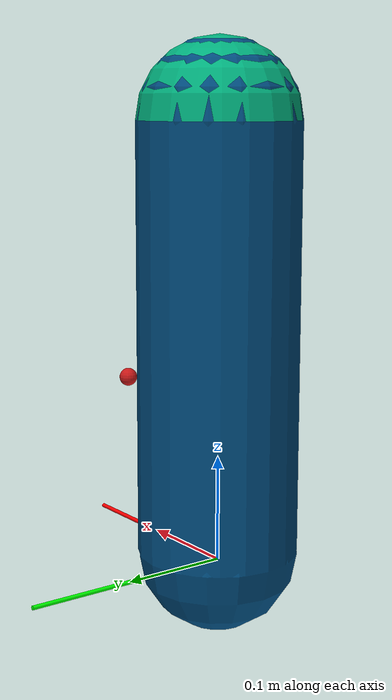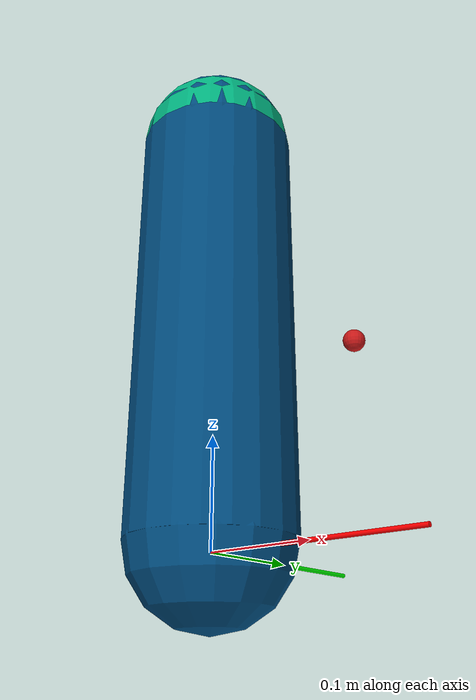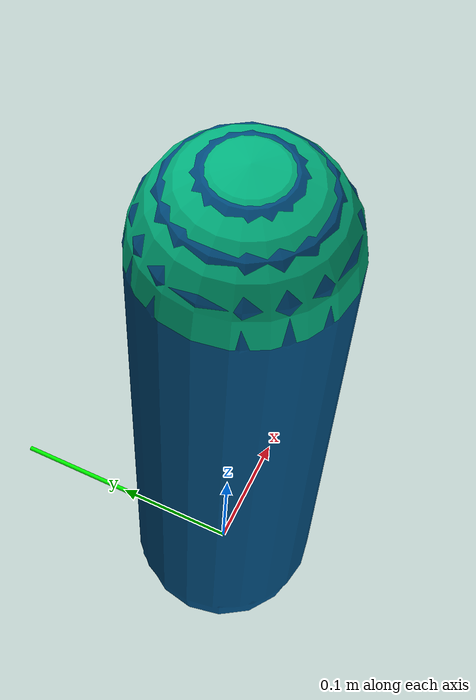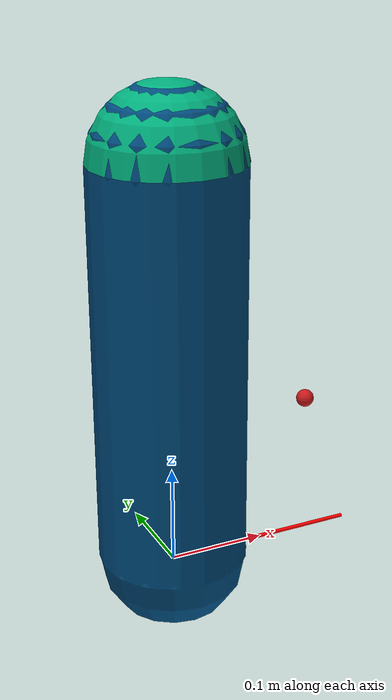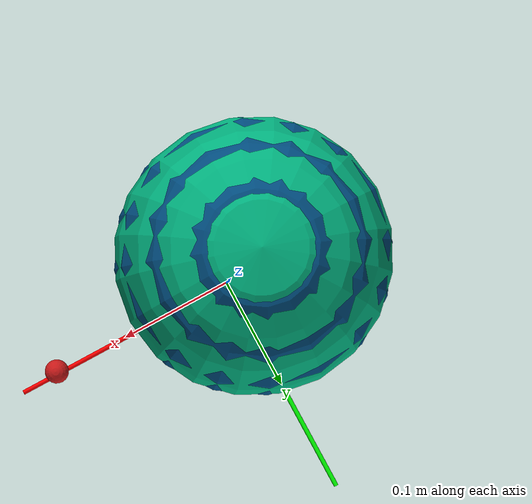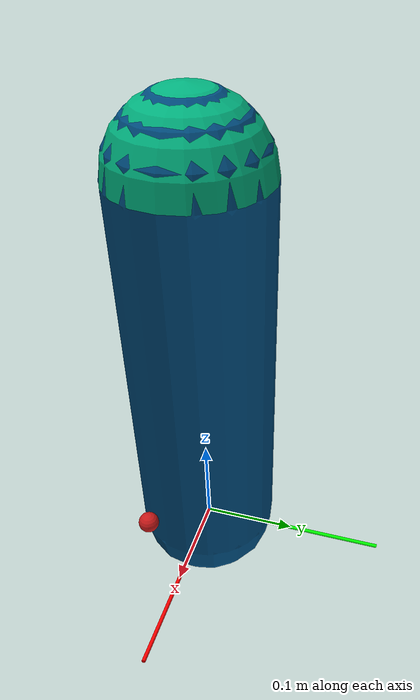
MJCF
<?xml version="1.0" ?>
<mujoco model="n_link_robot">
	<compiler angle="radian" inertiafromgeom="true"/>
	<asset>
		<texture type="skybox" builtin="gradient" rgb1="0.7 0.7 0.7" rgb2="0.7 0.7 0.7" width="512" height="512"/>
	</asset>
	<visual>
		<map znear="0.001"/>
		<scale forcewidth="0.1"/>
	</visual>
	<default>
		<joint armature="0.0" damping="0.7" frictionloss="0.0" stiffness="0.0" springref="0.0" limited="true"/>
		<geom contype="0" friction="1 0.1 0.1" rgba="1 1 1 1"/>
	</default>
	<option gravity="0 0 -9.81" integrator="implicit" timestep="0.01"/>
	<worldbody>
		<geom type="cylinder" fromto="0 0 0 0.2 0 0" size="0.002" rgba="1.0 0.0 0.0 1"/>
		<geom type="cylinder" fromto="0 0 0 0 0.2 0" size="0.002" rgba="0.0 1.0 0.0 1"/>
		<geom type="cylinder" fromto="0 0 0 0 0 0.2" size="0.002" rgba="0.0 0.0 1.0 1"/>
		<camera name="track" mode="trackcom" pos="0.3 -0.3 0.3" xyaxes="1 0 0 0 1 1" target="body0"/>
		<light cutoff="100" diffuse="1 1 1" dir="-0 0 -1.3" directional="true" exponent="1" pos="0.3 0.3 1.3" specular=".1 .1 .1"/>
		<geom conaffinity="0" contype="0" fromto="0 0 0 0 0 0.02" name="root" rgba="0.8 0.3 0.5 1" size=".011" type="cylinder"/>
		<body name="body0" pos="0 0 0.01">
			<joint axis="0 1 0" name="joint0" pos="0 0 0" type="hinge" damping="0.7" frictionloss="0.0" armature="0.0" stiffness="0.0" springref="0.0" limited="false"/>
			<geom fromto="0 0 0 0 0 0.4" name="link0" rgba="0.0 0.3 0.5 1" size="0.075" type="capsule" mass="7.0"/>
			<body name="fingertip" pos="0 0 0.4">
				<geom contype="0" name="fingertip" pos="0 0 0" rgba="0.0 0.7 0.5 1" size="0.075" type="sphere" mass="0.5"/>
			</body>
		</body>
		<geom conaffinity="0" contype="0" name="target" pos="0.15 0.0 0.15" rgba="0.8 0.1 0.1 1" size=".009" type="sphere"/>
	</worldbody>
	<actuator>
		<motor ctrllimited="true" ctrlrange="-20.0 20.0" gear="1.0" joint="joint0"/>
	</actuator>
</mujoco>
